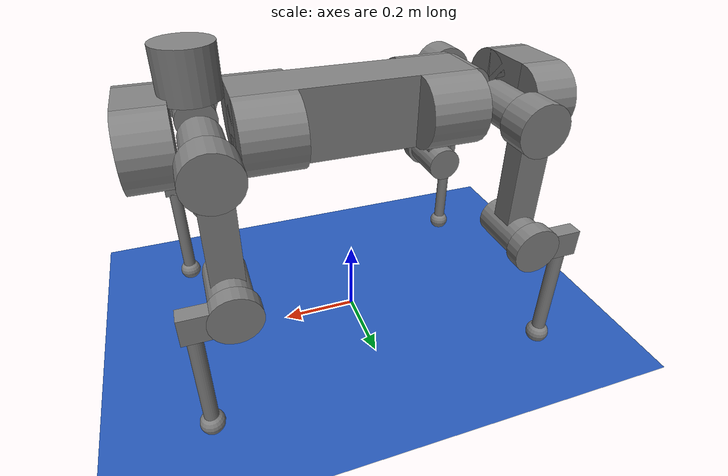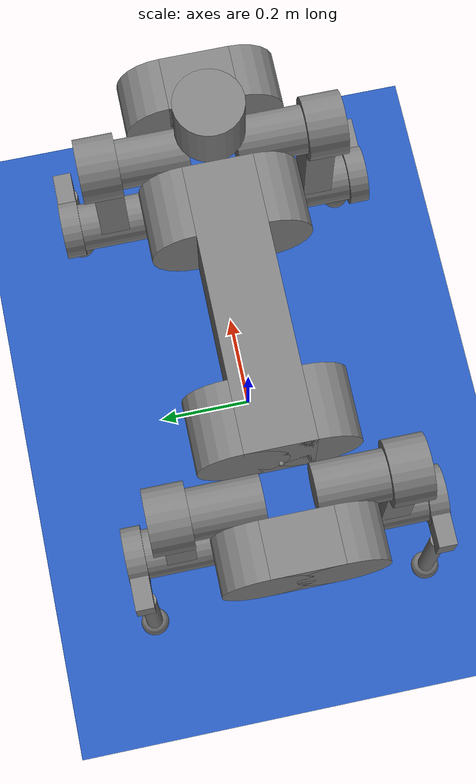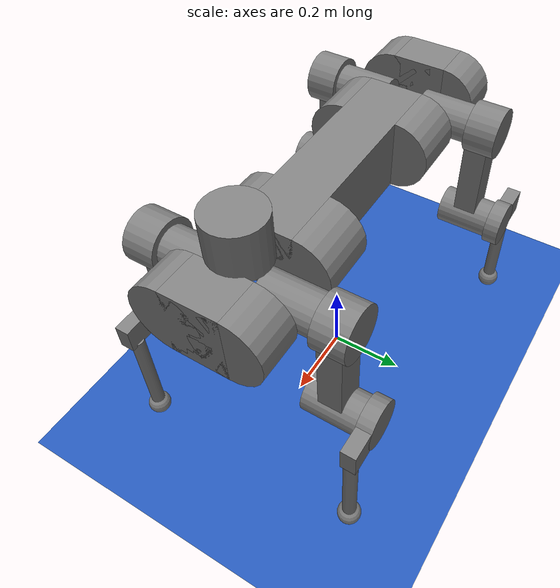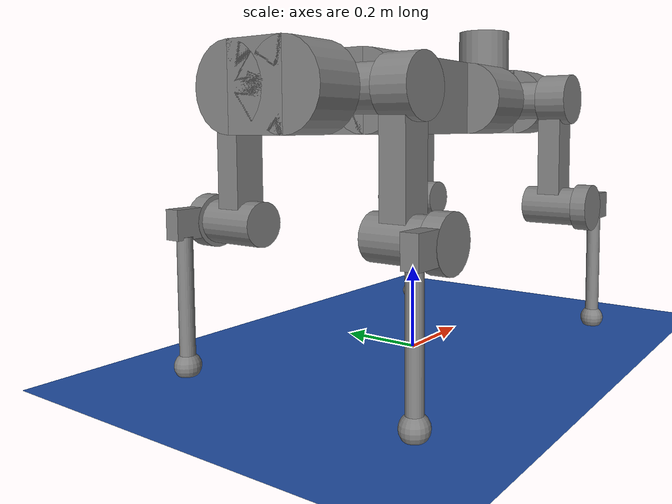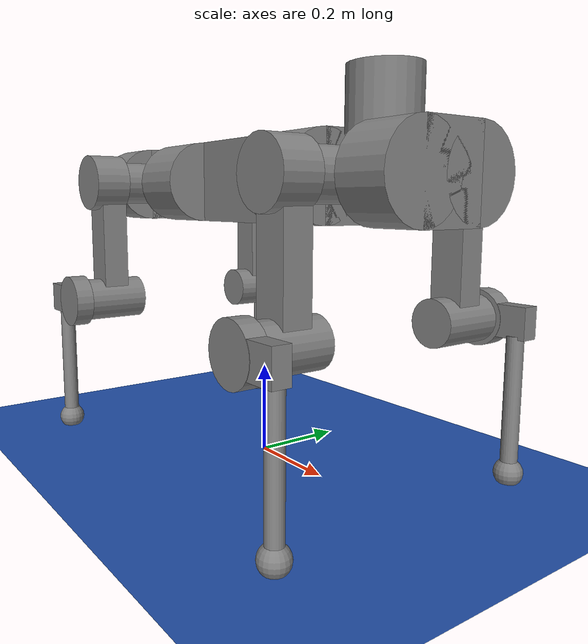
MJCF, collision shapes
<mujoco model="anymal_c scene">
  <include file="../../object/common.xml"/>

  <visual>
    <headlight diffuse="0.6 0.6 0.6"  ambient="0.3 0.3 0.3" specular="0 0 0"/>
    <global azimuth="-90"/>
  </visual>

  <statistic extent="1" center="0 0 .3"/>

  <worldbody>
    <light pos="0 0 1.5" dir="0 0 -1" diffuse="0.5 0.5 0.5" specular="0.3 0.3 0.3"
      directional="true" castshadow="false"/>
    <geom name="floor" size="0 0 0.1" pos="0 0 0" type="plane" material="blue_grid"/>
  </worldbody>

  <default>
    <default class="torque">
      <general gainprm="40" ctrllimited="true" ctrlrange="-100 100"/>
    </default>
    <default class="task">
      <site rgba="1 0 0 1" size=".02" group="5"/>
      <default class="flight">
        <site rgba="1 .3 .3 1" size="0.019" group="5"/>
      </default>
      <default class="stance">
        <site rgba=".3 1 .3 1" size=".018" group="4"/>
      </default>
    </default>
    <default class="prop">
      <geom type="box" rgba="0 0.4 1 1"/>
    </default>
  </default>

  <include file="AC_Motion_Full.xml"/>

  <actuator>
    <general class="torque" name="FR_hip" joint="FR_hip_joint"/>
    <general class="torque" name="FR_thigh" joint="FR_thigh_joint"/>
    <general class="torque" name="FR_calf" joint="FR_calf_joint"/>
    <general class="torque" name="FL_hip" joint="FL_hip_joint"/>
    <general class="torque" name="FL_thigh" joint="FL_thigh_joint"/>
    <general class="torque" name="FL_calf" joint="FL_calf_joint"/>
    <general class="torque" name="RR_hip" joint="RR_hip_joint"/>
    <general class="torque" name="RR_thigh" joint="RR_thigh_joint"/>
    <general class="torque" name="RR_calf" joint="RR_calf_joint"/>
    <general class="torque" name="RL_hip" joint="RL_hip_joint"/>
    <general class="torque" name="RL_thigh" joint="RL_thigh_joint"/>
    <general class="torque" name="RL_calf" joint="RL_calf_joint"/>
  </actuator>

  <sensor>
    <user name="Qpos" dim="12" user="0 0 0 0 0 0 0 0 0 0 0 0" />
    <user name="FootHeight" dim="4" user="0 0 0 0" />
    <user name="Height" dim="1" user="0" />
    <user name="Position" dim="3" user="0 0 0" />
    <user name="Heading" dim="2" />
    <user name="YPR" dim="3" user="0 0 0" />
    <user name="Balance" dim="2"/>
    <user name="Effort" dim="12"/>
    <subtreecom    name="torso_subtreecom" body="trunk"/>
    <subtreelinvel name="torso_subtreelinvel" body="trunk"/>
  </sensor>

  <keyframe>
    <key name="home"
         qpos="0 0 0.52
               1 0 0 0
               -0.0  1.0 -1.2
                0.0  1.0 -1.2
               -0.0 -1.0  1.2
                0.0 -1.0  1.2"/>

  </keyframe>

</mujoco>

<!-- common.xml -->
<mujoco>

  <visual>
    <headlight ambient=".4 .4 .4" diffuse=".8 .8 .8" specular="0.1 0.1 0.1"/>
    <map znear=".01"/>
    <quality shadowsize="2048"/>
    <global elevation="-15"/>
  </visual>

  <asset>
    <texture name="blue_grid" type="2d" builtin="checker" rgb1=".02 .14 .44" rgb2=".27 .55 1" width="300" height="300" mark="edge" markrgb="1 1 1"/>
    <material name="blue_grid" texture="blue_grid" texrepeat="1 1" texuniform="true" reflectance=".2"/>

    <texture name="grey_grid" type="2d" builtin="checker" rgb1=".26 .26 .26" rgb2=".6 .6 .6" width="300" height="300" mark="edge" markrgb="1 1 1"/>
    <material name="grey_grid" texture="blue_grid" texrepeat="1 1" texuniform="true" reflectance=".2"/>
    <texture name="skybox" type="skybox" builtin="gradient" rgb1="1 1 1" rgb2="1 1 1" width="800" height="800"/>

    <material name="self" rgba=".7 .5 .3 1"/>
    <material name="self_default" rgba=".7 .5 .3 1"/>
    <material name="self_highlight" rgba="0 .5 .3 1"/>
    <material name="effector" rgba=".7 .4 .2 1"/>
    <material name="effector_default" rgba=".7 .4 .2 1"/>
    <material name="effector_highlight" rgba="0 .5 .3 1"/>
    <material name="decoration" rgba=".2 .6 .3 1"/>
    <material name="eye" rgba="0 .2 1 1"/>
    <material name="target" rgba=".6 .3 .3 1"/>
    <material name="target_default" rgba=".6 .3 .3 1"/>
    <material name="target_highlight" rgba=".6 .3 .3 .4"/>
    <material name="site" rgba=".5 .5 .5 .3"/>
  </asset>
</mujoco>

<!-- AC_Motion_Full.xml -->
<mujoco model="anymal_c">
  <compiler angle="radian" meshdir="assets" texturedir="assets" autolimits="true"/>

  <option cone="elliptic" impratio="100"/>

  <default>
    <material specular="0" shininess="0.25"/>
    <default class="anymal_c">
      <joint damping="1" frictionloss="0.1"/>

      <default class="visual">
        <geom type="mesh" contype="0" conaffinity="0" group="2"/>
        <default class="visual_zflip">
          <geom quat="0 0 0 1"/>
        </default>
      </default>
      <default class="collision">
        <geom group="3" type="cylinder"/>
        <default class="foot">
          <geom type="sphere" size="0.03" pos="0 0 0.02325" priority="1" solimp="0.015 1 0.031" condim="6"
            friction="0.8 0.02 0.01"/>
        </default>
      </default>

      <default class="affine">
        <position kp="100" ctrlrange="-6.28 6.28" forcerange="-80 80"/>
      </default>
    </default>
  </default>

  <asset>
    <material name="black_plastic" rgba="0.007 0.007 0.007 1"/>
    <material name="green" rgba="0.052 0.178 0.033 1"/>
    <material name="red" rgba="0.178 0.006 0.005 1"/>
    <material name="yellow" rgba="0.178 0.119 0.006 1"/>
    <material name="lwl" rgba="0.8 0.8 0.8 1"/>
    <material name="base" texture="base"/>
    <material name="top_shell" texture="top_shell"/>
    <material name="bottom_shell" texture="bottom_shell"/>
    <material name="hip_l" texture="hip_l"/>
    <material name="thigh" texture="thigh"/>
    <material name="shank_l" texture="shank_l"/>
    <material name="foot" texture="foot"/>
    <material name="hip_r" texture="hip_r"/>
    <material name="shank" texture="shank_r"/>
    <material name="hatch" texture="hatch"/>
    <material name="remote" texture="remote"/>
    <material name="handle" texture="handle"/>
    <material name="face" texture="face"/>
    <material name="depth_camera" texture="depth_camera"/>
    <material name="wide_angle_camera" texture="wide_angle_camera"/>
    <material name="battery" texture="battery"/>
    <material name="lidar_cage" texture="lidar_cage"/>
    <material name="lidar" texture="lidar"/>
    <material name="drive" texture="drive"/>

    <texture type="2d" name="base" file="base.png"/>
    <texture type="2d" name="top_shell" file="top_shell.png"/>
    <texture type="2d" name="bottom_shell" file="bottom_shell.png"/>
    <texture type="2d" name="remote" file="remote.png"/>
    <texture type="2d" name="hatch" file="hatch.png"/>
    <texture type="2d" name="handle" file="handle.png"/>
    <texture type="2d" name="face" file="face.png"/>
    <texture type="2d" name="battery" file="battery.png"/>
    <texture type="2d" name="lidar_cage" file="lidar_cage.png"/>
    <texture type="2d" name="depth_camera" file="depth_camera.png"/>
    <texture type="2d" name="wide_angle_camera" file="wide_angle_camera.png"/>
    <texture type="2d" name="lidar" file="lidar.png"/>
    <texture type="2d" name="drive" file="drive.png"/>
    <texture type="2d" name="hip_l" file="hip_l.png"/>
    <texture type="2d" name="shank_l" file="shank_l.png"/>
    <texture type="2d" name="foot" file="foot.png"/>
    <texture type="2d" name="thigh" file="thigh.png"/>
    <texture type="2d" name="shank_r" file="shank_r.png"/>
    <texture type="2d" name="hip_r" file="hip_r.png"/>

    <mesh file="base_0.obj"/>
    <mesh file="base_1.obj"/>
    <mesh file="base_2.obj"/>
    <mesh file="base_3.obj"/>
    <mesh file="base_4.obj"/>
    <mesh file="base_5.obj"/>
    <mesh file="top_shell.obj"/>
    <mesh file="bottom_shell.obj"/>
    <mesh file="remote.obj"/>
    <mesh file="handle.obj"/>
    <mesh file="face.obj"/>
    <mesh file="wide_angle_camera.obj"/>
    <mesh file="depth_camera.obj"/>
    <mesh file="battery.obj"/>
    <mesh file="lidar_cage.obj"/>
    <mesh file="lidar.obj"/>
    <mesh file="drive.obj"/>
    <mesh file="hip_l.obj"/>
    <mesh file="thigh.obj"/>
    <mesh file="shank_l.obj"/>
    <mesh file="foot.obj"/>
    <mesh file="hip_r.obj"/>
    <mesh file="hatch.obj"/>
    <mesh file="shank_r.obj"/>
  </asset>

  <worldbody>
    <body name="trunk" pos="0 0 0.62" quat="0 0 0 1" childclass="anymal_c">
      <site name="torso"/>
      <site name="head" pos="0.3 0 0"/>
      <freejoint/>
      <inertial mass="19.2035" pos="0.0025 0 0.0502071" quat="0.5 0.5 0.5 0.5" diaginertia="0.639559 0.624031 0.217374"/>
      <geom mesh="base_0" material="green" class="visual"/>
      <geom mesh="base_1" material="yellow" class="visual"/>
      <geom mesh="base_2" material="red" class="visual"/>
      <geom mesh="base_3" material="black_plastic" class="visual"/>
      <geom mesh="base_4" material="lwl" class="visual"/>
      <geom mesh="base_5" material="base" class="visual"/>
      <geom class="collision" size="0.29 0.07 0.09" type="box"/>
      <geom class="collision" size="0.09 0.0725" pos="0.2175 0.07 0" quat="1 0 1 0"/>
      <geom class="collision" size="0.09 0.0725" pos="-0.2175 0.07 0" quat="1 0 1 0"/>
      <geom class="collision" size="0.09 0.0725" pos="0.2175 -0.07 0" quat="1 0 1 0"/>
      <geom class="collision" size="0.09 0.0725" pos="-0.2175 -0.07 0" quat="1 0 1 0"/>
      <geom material="top_shell" mesh="top_shell" class="visual"/>
      <geom material="bottom_shell" mesh="bottom_shell" class="visual"/>
      <geom material="remote" mesh="remote" class="visual"/>
      <geom material="handle" mesh="handle" class="visual"/>
      <geom pos="0.4145 0 0" material="face" mesh="face" class="visual"/>
      <geom class="collision" size="0.055 0.07 0.09" pos="0.4695 0 0" type="box"/>
      <geom class="collision" size="0.09 0.055" pos="0.4695 0.07 0" quat="1 0 1 0"/>
      <geom class="collision" size="0.09 0.055" pos="0.4695 -0.07 0" quat="1 0 1 0"/>
      <geom pos="0.46165 0 -0.0292" quat="0.965926 0 0.258819 0" material="depth_camera" mesh="depth_camera"
        class="visual"/>
      <geom pos="0.513 0 0.01497" material="wide_angle_camera" mesh="wide_angle_camera" class="visual"/>
      <geom pos="-0.4145 0 0" material="face" mesh="face" class="visual_zflip"/>
      <geom class="collision" size="0.055 0.07 0.09" pos="-0.4695 0 0" quat="0 0 0 1" type="box"/>
      <geom class="collision" size="0.09 0.055" pos="-0.4695 -0.07 0" quat="0 -1 0 1"/>
      <geom class="collision" size="0.09 0.055" pos="-0.4695 0.07 0" quat="0 -1 0 1"/>
      <geom pos="-0.46165 0 -0.0292" quat="0 -0.258819 0 0.965926" material="depth_camera" mesh="depth_camera"
        class="visual"/>
      <geom pos="-0.513 0 0.01497" material="wide_angle_camera" mesh="wide_angle_camera" class="visual_zflip"/>
      <geom material="battery" mesh="battery" class="visual"/>
      <geom pos="0 0.07646 0.02905" quat="0.683013 -0.183013 0.183013 0.683013" material="depth_camera"
        mesh="depth_camera" class="visual"/>
      <geom pos="0 -0.07646 0.02905" quat="0.683013 0.183013 0.183013 -0.683013" material="depth_camera"
        mesh="depth_camera" class="visual"/>
      <geom pos="-0.364 0 0.0735" material="lidar_cage" mesh="lidar_cage" class="visual"/>
      <geom class="collision" size="0.07 0.06" pos="-0.364 0 0.1335"/>
      <geom pos="-0.364 0 0.1422" quat="1 0 0 -1" material="lidar" mesh="lidar" class="visual"/>
      <geom pos="0.2999 0.104 0" quat="0.258819 0.965926 0 0" material="drive" mesh="drive" class="visual"/>
      <geom pos="0.2999 -0.104 0" quat="0.258819 -0.965926 0 0" material="drive" mesh="drive" class="visual"/>
      <geom pos="-0.2999 0.104 0" quat="0 0 0.965926 -0.258819" material="drive" mesh="drive" class="visual"/>
      <geom pos="-0.2999 -0.104 0" quat="0 0 -0.965926 -0.258819" material="drive" mesh="drive" class="visual"/>
      <geom pos="0.116 0 0.073" material="hatch" mesh="hatch" class="visual"/>
      <body name="FL_hip" pos="0.2999 0.104 0" quat="0.258819 0.965926 0 0">
        <inertial mass="2.781" pos="0.0566606 -0.015294 -0.00829784" quat="-0.127978 0.709783 -0.135278 0.679359"
          diaginertia="0.00585729 0.00491868 0.00329081"/>
        <joint name="FL_hip_joint" axis="1 0 0" range="-0.72 0.49"/>
        <geom quat="0.258819 -0.965926 0 0" material="hip_l" mesh="hip_l" class="visual"/>
        <geom pos="0.0599 -0.0725816 -0.041905" quat="0.183013 -0.683013 0.683013 0.183013" material="drive"
          mesh="drive" class="visual"/>
        <geom class="collision" size="0.05 0.07" pos="0.0599 -0.0119598 -0.006905"
          quat="-0.353553 -0.612372 0.612372 -0.353553"/>
        <body name="FL_thigh" pos="0.0599 -0.0725816 -0.041905" quat="0.183013 -0.683013 0.683013 0.183013">
          <inertial mass="3.071" pos="0.0308147 4.64995e-05 -0.245696" quat="0.993166 -0.00515309 -0.0806592 0.0841972"
            diaginertia="0.03025 0.0298943 0.00418465"/>
          <joint name="FL_thigh_joint" axis="1 0 0" range="-9.42478 9.42478"/>
          <geom quat="1 0 0 -1" material="thigh" mesh="thigh" class="visual"/>
          <geom class="collision" size="0.065 0.04" pos="0.04 0 0" quat="0.5 0.5 -0.5 -0.5"/>
          <geom class="collision" size="0.0375 0.03 0.141314" pos="0.03 0 -0.141314" quat="1 0 0 -1" type="box"/>
          <geom pos="0.1003 0 -0.285" material="drive" mesh="drive" class="visual"/>
          <geom class="collision" size="0.05 0.07" pos="0.0303 0 -0.285" quat="1 0 1 0"/>
          <body name="FL_calf" pos="0.1003 0 -0.285">
            <inertial mass="0.58842" pos="0.005462 -0.0612528 -0.0806598"
              quat="0.992934 -0.115904 -0.00105487 -0.0254421" diaginertia="0.0101637 0.00923838 0.00111927"/>
            <joint name="FL_calf_joint" axis="1 0 0" range="-9.42478 9.42478"/>
            <geom quat="1 0 0 -1" material="shank_l" mesh="shank_l" class="visual"/>
            <geom class="collision" size="0.06 0.02" pos="0.02 0 0" quat="0.5 0.5 -0.5 -0.5"/>
            <geom class="collision" size="0.057499 0.03375 0.019" pos="0.02 -0.057499 0" quat="0.5 0.5 -0.5 -0.5"
              type="box"/>
            <geom pos="0.01305 -0.08795 -0.33797" quat="0.382683 0 0 -0.92388" material="foot" mesh="foot"
              class="visual"/>
            <geom class="collision" size="0.0175 0.141252" pos="0.01305 -0.08795 -0.168985" quat="1 0 0 -1"/>
            <geom name="FL_foot" class="foot" pos="0.01305 -0.08795 -0.31547" quat="1 0 0 -1"/>
            <site name="FL_foot" pos="0.01305 -0.08795 -0.31547" type="sphere" size=".015"/>
          </body>
        </body>
      </body>
      <body name="FR_hip" pos="0.2999 -0.104 0" quat="0.258819 -0.965926 0 0">
        <inertial mass="2.781" pos="0.0567633 0.015294 -0.00829784" quat="0.13524 0.679072 0.127985 0.710065"
          diaginertia="0.00585928 0.0049205 0.00329064"/>
        <joint name="FR_hip_joint" axis="1 0 0" range="-0.49 0.72"/>
        <geom quat="0.258819 0.965926 0 0" material="hip_r" mesh="hip_r" class="visual"/>
        <geom pos="0.0599 0.0725816 -0.041905" quat="0.183013 0.683013 0.683013 -0.183013" material="drive" mesh="drive"
          class="visual"/>
        <geom class="collision" size="0.05 0.07" pos="0.0599 0.0119598 -0.006905"
          quat="-0.353553 0.612372 0.612372 0.353553"/>
        <body name="FR_thigh" pos="0.0599 0.0725816 -0.041905" quat="0.183013 0.683013 0.683013 -0.183013">
          <inertial mass="3.071" pos="0.0308147 4.64995e-05 -0.245696" quat="0.992775 -0.00512735 -0.0806685 0.0886811"
            diaginertia="0.0302511 0.0298933 0.0041845"/>
          <joint name="FR_thigh_joint" axis="-1 0 0" range="-9.42478 9.42478"/>
          <geom quat="1 0 0 -1" material="thigh" mesh="thigh" class="visual"/>
          <geom class="collision" size="0.065 0.04" pos="0.04 0 0" quat="0.5 0.5 0.5 0.5"/>
          <geom class="collision" size="0.0375 0.03 0.141314" pos="0.03 0 -0.141314" quat="1 0 0 1" type="box"/>
          <geom pos="0.1003 0 -0.285" material="drive" mesh="drive" class="visual"/>
          <geom class="collision" size="0.05 0.07" pos="0.0303 0 -0.285" quat="1 0 1 0"/>
          <body name="FR_calf" pos="0.1003 0 -0.285">
            <inertial mass="0.58842" pos="0.005462 0.0612528 -0.0806598" quat="0.992934 0.115904 -0.00105487 0.0254421"
              diaginertia="0.0101637 0.00923838 0.00111927"/>
            <joint name="FR_calf_joint" axis="-1 0 0" range="-9.42478 9.42478"/>
            <geom quat="1 0 0 1" material="shank" mesh="shank_r" class="visual"/>
            <geom class="collision" size="0.06 0.02" pos="0.02 0 0" quat="0.5 0.5 0.5 0.5"/>
            <geom class="collision" size="0.057499 0.03375 0.019" pos="0.02 0.057499 0" quat="0.5 0.5 0.5 0.5"
              type="box"/>
            <geom pos="0.01305 0.08795 -0.33797" quat="0.382683 0 0 0.92388" material="foot" mesh="foot" class="visual"/>
            <geom class="collision" size="0.0175 0.141252" pos="0.01305 0.08795 -0.168985" quat="1 0 0 1"/>
            <geom name="FR_foot" class="foot" pos="0.01305 0.08795 -0.31547" quat="1 0 0 1"/>
            <site name="FR_foot" pos="0.01305 0.08795 -0.31547" type="sphere" size=".015"/>
          </body>
        </body>
      </body>
      <body name="RL_hip" pos="-0.2999 0.104 0" quat="0 0 0.965926 -0.258819">
        <inertial mass="2.781" pos="0.0567633 0.015294 -0.00829784" quat="0.13524 0.679072 0.127985 0.710065"
          diaginertia="0.00585928 0.0049205 0.00329064"/>
        <joint name="RL_hip_joint" axis="-1 0 0" range="-0.72 0.49"/>
        <geom quat="-0.258819 -0.965926 0 0" material="hip_r" mesh="hip_r" class="visual"/>
        <geom pos="0.0599 0.0725816 -0.041905" quat="0.183013 0.683013 0.683013 -0.183013" material="drive" mesh="drive"
          class="visual"/>
        <geom class="collision" size="0.05 0.07" pos="0.0599 0.0119598 -0.006905"
          quat="-0.353553 0.612372 0.612372 0.353553"/>
        <body name="RL_thigh" pos="0.0599 0.0725816 -0.041905" quat="0.183013 0.683013 0.683013 -0.183013">
          <inertial mass="3.071" pos="0.0308147 4.64995e-05 -0.245696" quat="0.992775 -0.00512735 -0.0806685 0.0886811"
            diaginertia="0.0302511 0.0298933 0.0041845"/>
          <joint name="RL_thigh_joint" axis="1 0 0" range="-9.42478 9.42478"/>
          <geom quat="1 0 0 -1" material="thigh" mesh="thigh" class="visual"/>
          <geom class="collision" size="0.065 0.04" pos="0.04 0 0" quat="0.5 0.5 -0.5 -0.5"/>
          <geom class="collision" size="0.0375 0.03 0.141314" pos="0.03 0 -0.141314" quat="1 0 0 -1" type="box"/>
          <geom pos="0.1003 0 -0.285" material="drive" mesh="drive" class="visual"/>
          <geom class="collision" size="0.05 0.07" pos="0.0303 0 -0.285" quat="1 0 1 0"/>
          <body name="RL_calf" pos="0.1003 0 -0.285">
            <inertial mass="0.58842" pos="0.005462 0.0612528 -0.0806598" quat="0.992934 0.115904 -0.00105487 0.0254421"
              diaginertia="0.0101637 0.00923838 0.00111927"/>
            <joint name="RL_calf_joint" axis="1 0 0" range="-9.42478 9.42478"/>
            <geom quat="-1 0 0 -1" material="shank" mesh="shank_r" class="visual"/>
            <geom class="collision" size="0.06 0.02" pos="0.02 0 0" quat="0.5 0.5 -0.5 -0.5"/>
            <geom class="collision" size="0.057499 0.03375 0.019" pos="0.02 0.057499 0" quat="0.5 0.5 -0.5 -0.5"
              type="box"/>
            <geom pos="0.01305 0.08795 -0.33797" quat="-0.382683 0 0 -0.92388" material="foot" mesh="foot"
              class="visual"/>
            <geom class="collision" size="0.0175 0.141252" pos="0.01305 0.08795 -0.168985" quat="1 0 0 -1"/>
            <geom name="RL_foot" class="foot" pos="0.01305 0.08795 -0.31547" quat="1 0 0 -1"/>
            <site name="RL_foot" pos="0.01305 0.08795 -0.31547" type="sphere" size=".015"/>
          </body>
        </body>
      </body>
      <body name="RR_hip" pos="-0.2999 -0.104 0" quat="0 0 -0.965926 -0.258819">
        <inertial mass="2.781" pos="0.0566606 -0.015294 -0.00829784" quat="-0.127978 0.709783 -0.135278 0.679359"
          diaginertia="0.00585729 0.00491868 0.00329081"/>
        <joint name="RR_hip_joint" axis="-1 0 0" range="-0.49 0.72"/>
        <geom quat="-0.258819 0.965926 0 0" material="hip_l" mesh="hip_l" class="visual"/>
        <geom pos="0.0599 -0.0725816 -0.041905" quat="-0.183013 0.683013 -0.683013 -0.183013" material="drive"
          mesh="drive" class="visual"/>
        <geom class="collision" size="0.05 0.07" pos="0.0599 -0.0119598 -0.006905"
          quat="0.353553 0.612372 -0.612372 0.353553"/>
        <body name="RR_thigh" pos="0.0599 -0.0725816 -0.041905" quat="-0.183013 0.683013 -0.683013 -0.183013">
          <inertial mass="3.071" pos="0.0308147 4.64995e-05 -0.245696" quat="0.993166 -0.00515309 -0.0806592 0.0841972"
            diaginertia="0.03025 0.0298943 0.00418465"/>
          <joint name="RR_thigh_joint" axis="-1 0 0" range="-9.42478 9.42478"/>
          <geom quat="1 0 0 -1" material="thigh" mesh="thigh" class="visual"/>
          <geom class="collision" size="0.065 0.04" pos="0.04 0 0" quat="0.5 0.5 0.5 0.5"/>
          <geom class="collision" size="0.0375 0.03 0.141314" pos="0.03 0 -0.141314" quat="1 0 0 1" type="box"/>
          <geom pos="0.1003 0 -0.285" material="drive" mesh="drive" class="visual"/>
          <geom class="collision" size="0.05 0.07" pos="0.0303 0 -0.285" quat="1 0 1 0"/>
          <body name="RR_calf" pos="0.1003 0 -0.285">
            <inertial mass="0.58842" pos="0.005462 -0.0612528 -0.0806598"
              quat="0.992934 -0.115904 -0.00105487 -0.0254421" diaginertia="0.0101637 0.00923838 0.00111927"/>
            <joint name="RR_calf_joint" axis="-1 0 0" range="-9.42478 9.42478"/>
            <geom quat="1 0 0 -1" material="shank_l" mesh="shank_l" class="visual"/>
            <geom class="collision" size="0.06 0.02" pos="0.02 0 0" quat="0.5 0.5 0.5 0.5"/>
            <geom class="collision" size="0.057499 0.03375 0.019" pos="0.02 -0.057499 0" quat="0.5 0.5 0.5 0.5"
              type="box"/>
            <geom pos="0.01305 -0.08795 -0.33797" quat="0.382683 0 0 -0.92388" material="foot" mesh="foot"
              class="visual"/>
            <geom class="collision" size="0.0175 0.141252" pos="0.01305 -0.08795 -0.168985" quat="1 0 0 1"/>
            <geom name="RR_foot" class="foot" pos="0.01305 -0.08795 -0.31547" quat="1 0 0 1"/>
            <site name="RR_foot" pos="0.01305 -0.08795 -0.31547" type="sphere" size=".015"/>
          </body>
        </body>
      </body>
    </body>
  </worldbody>

  <contact>
    <exclude body1="trunk" body2="FL_thigh"/>
    <exclude body1="trunk" body2="FR_thigh"/>
    <exclude body1="trunk" body2="RL_thigh"/>
    <exclude body1="trunk" body2="RR_thigh"/>
  </contact>
</mujoco>
